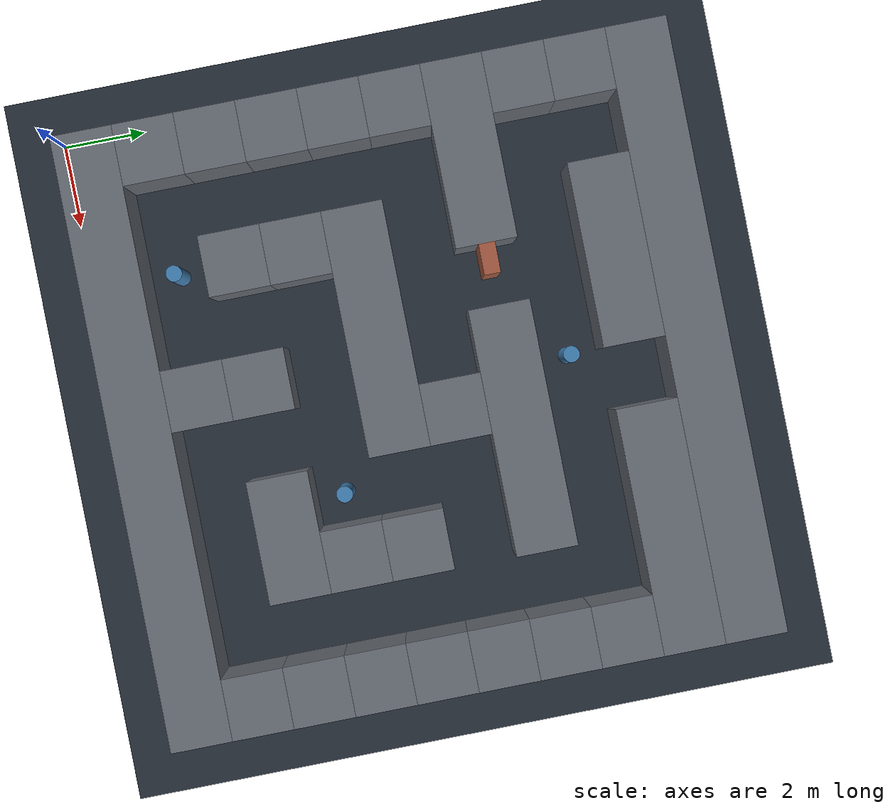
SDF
<?xml version="1.0"?>
<sdf version="1.9">
  <world name="maze">
    <plugin filename="gz-sim-physics-system" name="gz::sim::systems::Physics"/>
    <plugin filename="gz-sim-user-commands-system" name="gz::sim::systems::UserCommands"/>
    <plugin filename="gz-sim-scene-broadcaster-system" name="gz::sim::systems::SceneBroadcaster"/>
    <plugin filename="gz-sim-sensors-system" name="gz::sim::systems::Sensors">
      <render_engine>ogre2</render_engine>
    </plugin>
    <plugin filename="gz-sim-imu-system" name="gz::sim::systems::Imu"/>

    <gravity>0 0 -9.81</gravity>
    <physics name="accurate_omni_physics" type="ode">
      <max_step_size>0.001</max_step_size>
      <real_time_factor>1.0</real_time_factor>
      <real_time_update_rate>1000</real_time_update_rate>
    </physics>

    <scene>
      <ambient>0.35 0.38 0.42 1</ambient>
      <background>0.08 0.10 0.14 1</background>
      <shadows>true</shadows>
      <grid>false</grid>
    </scene>

    <light name="sun" type="directional">
      <pose>7.5 7.5 15 0.35 -0.45 0</pose>
      <direction>-0.3 0.3 -0.9</direction>
      <diffuse>0.9 0.9 0.95 1</diffuse>
      <specular>0.3 0.3 0.35 1</specular>
      <attenuation><range>50</range></attenuation>
      <cast_shadows>true</cast_shadows>
    </light>

    <model name="maze_floor">
      <static>true</static>
      <pose>7.5 7.5 0 0 0 0</pose>
      <link name="link">
        <collision name="collision">
          <geometry><plane><normal>0 0 1</normal><size>18 18</size></plane></geometry>
          <surface><friction><ode><mu>1.0</mu><mu2>1.0</mu2></ode></friction></surface>
        </collision>
        <visual name="visual">
          <geometry><plane><normal>0 0 1</normal><size>18 18</size></plane></geometry>
          <material>
            <ambient>0.10 0.12 0.16 1</ambient>
            <diffuse>0.15 0.18 0.22 1</diffuse>
          </material>
        </visual>
      </link>
    </model>

    <model name="maze">
      <static>true</static>
      <link name="walls">
      <collision name="wall_col_0">
        <pose>7.500 0.750 0.600 0 0 0</pose>
        <geometry><box><size>15.000 1.500 1.200</size></box></geometry>
        <surface><friction><ode><mu>1.0</mu><mu2>1.0</mu2></ode></friction></surface>
      </collision>
      <visual name="wall_vis_0">
        <pose>7.500 0.750 0.600 0 0 0</pose>
        <geometry><box><size>15.000 1.500 1.200</size></box></geometry>
        <material>
          <ambient>0.25 0.27 0.30 1</ambient>
          <diffuse>0.40 0.42 0.45 1</diffuse>
          <specular>0.1 0.1 0.1 1</specular>
        </material>
      </visual>
      <collision name="wall_col_1">
        <pose>0.750 2.250 0.600 0 0 0</pose>
        <geometry><box><size>1.500 1.500 1.200</size></box></geometry>
        <surface><friction><ode><mu>1.0</mu><mu2>1.0</mu2></ode></friction></surface>
      </collision>
      <visual name="wall_vis_1">
        <pose>0.750 2.250 0.600 0 0 0</pose>
        <geometry><box><size>1.500 1.500 1.200</size></box></geometry>
        <material>
          <ambient>0.25 0.27 0.30 1</ambient>
          <diffuse>0.40 0.42 0.45 1</diffuse>
          <specular>0.1 0.1 0.1 1</specular>
        </material>
      </visual>
      <collision name="wall_col_2">
        <pose>6.750 2.250 0.600 0 0 0</pose>
        <geometry><box><size>1.500 1.500 1.200</size></box></geometry>
        <surface><friction><ode><mu>1.0</mu><mu2>1.0</mu2></ode></friction></surface>
      </collision>
      <visual name="wall_vis_2">
        <pose>6.750 2.250 0.600 0 0 0</pose>
        <geometry><box><size>1.500 1.500 1.200</size></box></geometry>
        <material>
          <ambient>0.25 0.27 0.30 1</ambient>
          <diffuse>0.40 0.42 0.45 1</diffuse>
          <specular>0.1 0.1 0.1 1</specular>
        </material>
      </visual>
      <collision name="wall_col_3">
        <pose>14.250 2.250 0.600 0 0 0</pose>
        <geometry><box><size>1.500 1.500 1.200</size></box></geometry>
        <surface><friction><ode><mu>1.0</mu><mu2>1.0</mu2></ode></friction></surface>
      </collision>
      <visual name="wall_vis_3">
        <pose>14.250 2.250 0.600 0 0 0</pose>
        <geometry><box><size>1.500 1.500 1.200</size></box></geometry>
        <material>
          <ambient>0.25 0.27 0.30 1</ambient>
          <diffuse>0.40 0.42 0.45 1</diffuse>
          <specular>0.1 0.1 0.1 1</specular>
        </material>
      </visual>
      <collision name="wall_col_4">
        <pose>0.750 3.750 0.600 0 0 0</pose>
        <geometry><box><size>1.500 1.500 1.200</size></box></geometry>
        <surface><friction><ode><mu>1.0</mu><mu2>1.0</mu2></ode></friction></surface>
      </collision>
      <visual name="wall_vis_4">
        <pose>0.750 3.750 0.600 0 0 0</pose>
        <geometry><box><size>1.500 1.500 1.200</size></box></geometry>
        <material>
          <ambient>0.25 0.27 0.30 1</ambient>
          <diffuse>0.40 0.42 0.45 1</diffuse>
          <specular>0.1 0.1 0.1 1</specular>
        </material>
      </visual>
      <collision name="wall_col_5">
        <pose>3.750 3.750 0.600 0 0 0</pose>
        <geometry><box><size>1.500 1.500 1.200</size></box></geometry>
        <surface><friction><ode><mu>1.0</mu><mu2>1.0</mu2></ode></friction></surface>
      </collision>
      <visual name="wall_vis_5">
        <pose>3.750 3.750 0.600 0 0 0</pose>
        <geometry><box><size>1.500 1.500 1.200</size></box></geometry>
        <material>
          <ambient>0.25 0.27 0.30 1</ambient>
          <diffuse>0.40 0.42 0.45 1</diffuse>
          <specular>0.1 0.1 0.1 1</specular>
        </material>
      </visual>
      <collision name="wall_col_6">
        <pose>6.750 3.750 0.600 0 0 0</pose>
        <geometry><box><size>1.500 1.500 1.200</size></box></geometry>
        <surface><friction><ode><mu>1.0</mu><mu2>1.0</mu2></ode></friction></surface>
      </collision>
      <visual name="wall_vis_6">
        <pose>6.750 3.750 0.600 0 0 0</pose>
        <geometry><box><size>1.500 1.500 1.200</size></box></geometry>
        <material>
          <ambient>0.25 0.27 0.30 1</ambient>
          <diffuse>0.40 0.42 0.45 1</diffuse>
          <specular>0.1 0.1 0.1 1</specular>
        </material>
      </visual>
      <collision name="wall_col_7">
        <pose>10.500 3.750 0.600 0 0 0</pose>
        <geometry><box><size>3.000 1.500 1.200</size></box></geometry>
        <surface><friction><ode><mu>1.0</mu><mu2>1.0</mu2></ode></friction></surface>
      </collision>
      <visual name="wall_vis_7">
        <pose>10.500 3.750 0.600 0 0 0</pose>
        <geometry><box><size>3.000 1.500 1.200</size></box></geometry>
        <material>
          <ambient>0.25 0.27 0.30 1</ambient>
          <diffuse>0.40 0.42 0.45 1</diffuse>
          <specular>0.1 0.1 0.1 1</specular>
        </material>
      </visual>
      <collision name="wall_col_8">
        <pose>14.250 3.750 0.600 0 0 0</pose>
        <geometry><box><size>1.500 1.500 1.200</size></box></geometry>
        <surface><friction><ode><mu>1.0</mu><mu2>1.0</mu2></ode></friction></surface>
      </collision>
      <visual name="wall_vis_8">
        <pose>14.250 3.750 0.600 0 0 0</pose>
        <geometry><box><size>1.500 1.500 1.200</size></box></geometry>
        <material>
          <ambient>0.25 0.27 0.30 1</ambient>
          <diffuse>0.40 0.42 0.45 1</diffuse>
          <specular>0.1 0.1 0.1 1</specular>
        </material>
      </visual>
      <collision name="wall_col_9">
        <pose>0.750 5.250 0.600 0 0 0</pose>
        <geometry><box><size>1.500 1.500 1.200</size></box></geometry>
        <surface><friction><ode><mu>1.0</mu><mu2>1.0</mu2></ode></friction></surface>
      </collision>
      <visual name="wall_vis_9">
        <pose>0.750 5.250 0.600 0 0 0</pose>
        <geometry><box><size>1.500 1.500 1.200</size></box></geometry>
        <material>
          <ambient>0.25 0.27 0.30 1</ambient>
          <diffuse>0.40 0.42 0.45 1</diffuse>
          <specular>0.1 0.1 0.1 1</specular>
        </material>
      </visual>
      <collision name="wall_col_10">
        <pose>3.750 5.250 0.600 0 0 0</pose>
        <geometry><box><size>1.500 1.500 1.200</size></box></geometry>
        <surface><friction><ode><mu>1.0</mu><mu2>1.0</mu2></ode></friction></surface>
      </collision>
      <visual name="wall_vis_10">
        <pose>3.750 5.250 0.600 0 0 0</pose>
        <geometry><box><size>1.500 1.500 1.200</size></box></geometry>
        <material>
          <ambient>0.25 0.27 0.30 1</ambient>
          <diffuse>0.40 0.42 0.45 1</diffuse>
          <specular>0.1 0.1 0.1 1</specular>
        </material>
      </visual>
      <collision name="wall_col_11">
        <pose>11.250 5.250 0.600 0 0 0</pose>
        <geometry><box><size>1.500 1.500 1.200</size></box></geometry>
        <surface><friction><ode><mu>1.0</mu><mu2>1.0</mu2></ode></friction></surface>
      </collision>
      <visual name="wall_vis_11">
        <pose>11.250 5.250 0.600 0 0 0</pose>
        <geometry><box><size>1.500 1.500 1.200</size></box></geometry>
        <material>
          <ambient>0.25 0.27 0.30 1</ambient>
          <diffuse>0.40 0.42 0.45 1</diffuse>
          <specular>0.1 0.1 0.1 1</specular>
        </material>
      </visual>
      <collision name="wall_col_12">
        <pose>14.250 5.250 0.600 0 0 0</pose>
        <geometry><box><size>1.500 1.500 1.200</size></box></geometry>
        <surface><friction><ode><mu>1.0</mu><mu2>1.0</mu2></ode></friction></surface>
      </collision>
      <visual name="wall_vis_12">
        <pose>14.250 5.250 0.600 0 0 0</pose>
        <geometry><box><size>1.500 1.500 1.200</size></box></geometry>
        <material>
          <ambient>0.25 0.27 0.30 1</ambient>
          <diffuse>0.40 0.42 0.45 1</diffuse>
          <specular>0.1 0.1 0.1 1</specular>
        </material>
      </visual>
      <collision name="wall_col_13">
        <pose>0.750 6.750 0.600 0 0 0</pose>
        <geometry><box><size>1.500 1.500 1.200</size></box></geometry>
        <surface><friction><ode><mu>1.0</mu><mu2>1.0</mu2></ode></friction></surface>
      </collision>
      <visual name="wall_vis_13">
        <pose>0.750 6.750 0.600 0 0 0</pose>
        <geometry><box><size>1.500 1.500 1.200</size></box></geometry>
        <material>
          <ambient>0.25 0.27 0.30 1</ambient>
          <diffuse>0.40 0.42 0.45 1</diffuse>
          <specular>0.1 0.1 0.1 1</specular>
        </material>
      </visual>
      <collision name="wall_col_14">
        <pose>6.000 6.750 0.600 0 0 0</pose>
        <geometry><box><size>6.000 1.500 1.200</size></box></geometry>
        <surface><friction><ode><mu>1.0</mu><mu2>1.0</mu2></ode></friction></surface>
      </collision>
      <visual name="wall_vis_14">
        <pose>6.000 6.750 0.600 0 0 0</pose>
        <geometry><box><size>6.000 1.500 1.200</size></box></geometry>
        <material>
          <ambient>0.25 0.27 0.30 1</ambient>
          <diffuse>0.40 0.42 0.45 1</diffuse>
          <specular>0.1 0.1 0.1 1</specular>
        </material>
      </visual>
      <collision name="wall_col_15">
        <pose>11.250 6.750 0.600 0 0 0</pose>
        <geometry><box><size>1.500 1.500 1.200</size></box></geometry>
        <surface><friction><ode><mu>1.0</mu><mu2>1.0</mu2></ode></friction></surface>
      </collision>
      <visual name="wall_vis_15">
        <pose>11.250 6.750 0.600 0 0 0</pose>
        <geometry><box><size>1.500 1.500 1.200</size></box></geometry>
        <material>
          <ambient>0.25 0.27 0.30 1</ambient>
          <diffuse>0.40 0.42 0.45 1</diffuse>
          <specular>0.1 0.1 0.1 1</specular>
        </material>
      </visual>
      <collision name="wall_col_16">
        <pose>14.250 6.750 0.600 0 0 0</pose>
        <geometry><box><size>1.500 1.500 1.200</size></box></geometry>
        <surface><friction><ode><mu>1.0</mu><mu2>1.0</mu2></ode></friction></surface>
      </collision>
      <visual name="wall_vis_16">
        <pose>14.250 6.750 0.600 0 0 0</pose>
        <geometry><box><size>1.500 1.500 1.200</size></box></geometry>
        <material>
          <ambient>0.25 0.27 0.30 1</ambient>
          <diffuse>0.40 0.42 0.45 1</diffuse>
          <specular>0.1 0.1 0.1 1</specular>
        </material>
      </visual>
      <collision name="wall_col_17">
        <pose>0.750 8.250 0.600 0 0 0</pose>
        <geometry><box><size>1.500 1.500 1.200</size></box></geometry>
        <surface><friction><ode><mu>1.0</mu><mu2>1.0</mu2></ode></friction></surface>
      </collision>
      <visual name="wall_vis_17">
        <pose>0.750 8.250 0.600 0 0 0</pose>
        <geometry><box><size>1.500 1.500 1.200</size></box></geometry>
        <material>
          <ambient>0.25 0.27 0.30 1</ambient>
          <diffuse>0.40 0.42 0.45 1</diffuse>
          <specular>0.1 0.1 0.1 1</specular>
        </material>
      </visual>
      <collision name="wall_col_18">
        <pose>8.250 8.250 0.600 0 0 0</pose>
        <geometry><box><size>1.500 1.500 1.200</size></box></geometry>
        <surface><friction><ode><mu>1.0</mu><mu2>1.0</mu2></ode></friction></surface>
      </collision>
      <visual name="wall_vis_18">
        <pose>8.250 8.250 0.600 0 0 0</pose>
        <geometry><box><size>1.500 1.500 1.200</size></box></geometry>
        <material>
          <ambient>0.25 0.27 0.30 1</ambient>
          <diffuse>0.40 0.42 0.45 1</diffuse>
          <specular>0.1 0.1 0.1 1</specular>
        </material>
      </visual>
      <collision name="wall_col_19">
        <pose>14.250 8.250 0.600 0 0 0</pose>
        <geometry><box><size>1.500 1.500 1.200</size></box></geometry>
        <surface><friction><ode><mu>1.0</mu><mu2>1.0</mu2></ode></friction></surface>
      </collision>
      <visual name="wall_vis_19">
        <pose>14.250 8.250 0.600 0 0 0</pose>
        <geometry><box><size>1.500 1.500 1.200</size></box></geometry>
        <material>
          <ambient>0.25 0.27 0.30 1</ambient>
          <diffuse>0.40 0.42 0.45 1</diffuse>
          <specular>0.1 0.1 0.1 1</specular>
        </material>
      </visual>
      <collision name="wall_col_20">
        <pose>2.250 9.750 0.600 0 0 0</pose>
        <geometry><box><size>4.500 1.500 1.200</size></box></geometry>
        <surface><friction><ode><mu>1.0</mu><mu2>1.0</mu2></ode></friction></surface>
      </collision>
      <visual name="wall_vis_20">
        <pose>2.250 9.750 0.600 0 0 0</pose>
        <geometry><box><size>4.500 1.500 1.200</size></box></geometry>
        <material>
          <ambient>0.25 0.27 0.30 1</ambient>
          <diffuse>0.40 0.42 0.45 1</diffuse>
          <specular>0.1 0.1 0.1 1</specular>
        </material>
      </visual>
      <collision name="wall_col_21">
        <pose>9.000 9.750 0.600 0 0 0</pose>
        <geometry><box><size>6.000 1.500 1.200</size></box></geometry>
        <surface><friction><ode><mu>1.0</mu><mu2>1.0</mu2></ode></friction></surface>
      </collision>
      <visual name="wall_vis_21">
        <pose>9.000 9.750 0.600 0 0 0</pose>
        <geometry><box><size>6.000 1.500 1.200</size></box></geometry>
        <material>
          <ambient>0.25 0.27 0.30 1</ambient>
          <diffuse>0.40 0.42 0.45 1</diffuse>
          <specular>0.1 0.1 0.1 1</specular>
        </material>
      </visual>
      <collision name="wall_col_22">
        <pose>14.250 9.750 0.600 0 0 0</pose>
        <geometry><box><size>1.500 1.500 1.200</size></box></geometry>
        <surface><friction><ode><mu>1.0</mu><mu2>1.0</mu2></ode></friction></surface>
      </collision>
      <visual name="wall_vis_22">
        <pose>14.250 9.750 0.600 0 0 0</pose>
        <geometry><box><size>1.500 1.500 1.200</size></box></geometry>
        <material>
          <ambient>0.25 0.27 0.30 1</ambient>
          <diffuse>0.40 0.42 0.45 1</diffuse>
          <specular>0.1 0.1 0.1 1</specular>
        </material>
      </visual>
      <collision name="wall_col_23">
        <pose>0.750 11.250 0.600 0 0 0</pose>
        <geometry><box><size>1.500 1.500 1.200</size></box></geometry>
        <surface><friction><ode><mu>1.0</mu><mu2>1.0</mu2></ode></friction></surface>
      </collision>
      <visual name="wall_vis_23">
        <pose>0.750 11.250 0.600 0 0 0</pose>
        <geometry><box><size>1.500 1.500 1.200</size></box></geometry>
        <material>
          <ambient>0.25 0.27 0.30 1</ambient>
          <diffuse>0.40 0.42 0.45 1</diffuse>
          <specular>0.1 0.1 0.1 1</specular>
        </material>
      </visual>
      <collision name="wall_col_24">
        <pose>14.250 11.250 0.600 0 0 0</pose>
        <geometry><box><size>1.500 1.500 1.200</size></box></geometry>
        <surface><friction><ode><mu>1.0</mu><mu2>1.0</mu2></ode></friction></surface>
      </collision>
      <visual name="wall_vis_24">
        <pose>14.250 11.250 0.600 0 0 0</pose>
        <geometry><box><size>1.500 1.500 1.200</size></box></geometry>
        <material>
          <ambient>0.25 0.27 0.30 1</ambient>
          <diffuse>0.40 0.42 0.45 1</diffuse>
          <specular>0.1 0.1 0.1 1</specular>
        </material>
      </visual>
      <collision name="wall_col_25">
        <pose>0.750 12.750 0.600 0 0 0</pose>
        <geometry><box><size>1.500 1.500 1.200</size></box></geometry>
        <surface><friction><ode><mu>1.0</mu><mu2>1.0</mu2></ode></friction></surface>
      </collision>
      <visual name="wall_vis_25">
        <pose>0.750 12.750 0.600 0 0 0</pose>
        <geometry><box><size>1.500 1.500 1.200</size></box></geometry>
        <material>
          <ambient>0.25 0.27 0.30 1</ambient>
          <diffuse>0.40 0.42 0.45 1</diffuse>
          <specular>0.1 0.1 0.1 1</specular>
        </material>
      </visual>
      <collision name="wall_col_26">
        <pose>5.250 12.750 0.600 0 0 0</pose>
        <geometry><box><size>4.500 1.500 1.200</size></box></geometry>
        <surface><friction><ode><mu>1.0</mu><mu2>1.0</mu2></ode></friction></surface>
      </collision>
      <visual name="wall_vis_26">
        <pose>5.250 12.750 0.600 0 0 0</pose>
        <geometry><box><size>4.500 1.500 1.200</size></box></geometry>
        <material>
          <ambient>0.25 0.27 0.30 1</ambient>
          <diffuse>0.40 0.42 0.45 1</diffuse>
          <specular>0.1 0.1 0.1 1</specular>
        </material>
      </visual>
      <collision name="wall_col_27">
        <pose>12.000 12.750 0.600 0 0 0</pose>
        <geometry><box><size>6.000 1.500 1.200</size></box></geometry>
        <surface><friction><ode><mu>1.0</mu><mu2>1.0</mu2></ode></friction></surface>
      </collision>
      <visual name="wall_vis_27">
        <pose>12.000 12.750 0.600 0 0 0</pose>
        <geometry><box><size>6.000 1.500 1.200</size></box></geometry>
        <material>
          <ambient>0.25 0.27 0.30 1</ambient>
          <diffuse>0.40 0.42 0.45 1</diffuse>
          <specular>0.1 0.1 0.1 1</specular>
        </material>
      </visual>
      <collision name="wall_col_28">
        <pose>7.500 14.250 0.600 0 0 0</pose>
        <geometry><box><size>15.000 1.500 1.200</size></box></geometry>
        <surface><friction><ode><mu>1.0</mu><mu2>1.0</mu2></ode></friction></surface>
      </collision>
      <visual name="wall_vis_28">
        <pose>7.500 14.250 0.600 0 0 0</pose>
        <geometry><box><size>15.000 1.500 1.200</size></box></geometry>
        <material>
          <ambient>0.25 0.27 0.30 1</ambient>
          <diffuse>0.40 0.42 0.45 1</diffuse>
          <specular>0.1 0.1 0.1 1</specular>
        </material>
      </visual>
      <collision name="narrow_gap_col">
        <pose>4.700 9.750 0.600 0 0 0</pose>
        <geometry><box><size>1.100 0.400 1.200</size></box></geometry>
        <surface><friction><ode><mu>1.0</mu><mu2>1.0</mu2></ode></friction></surface>
      </collision>
      <visual name="narrow_gap_vis">
        <pose>4.700 9.750 0.600 0 0 0</pose>
        <geometry><box><size>1.100 0.400 1.200</size></box></geometry>
        <material>
          <ambient>0.45 0.25 0.20 1</ambient>
          <diffuse>0.65 0.35 0.25 1</diffuse>
        </material>
      </visual>
      <collision name="cyl_col_0">
        <pose>3.750 2.250 0.500 0 0 0</pose>
        <geometry><cylinder><radius>0.200</radius><length>1.000</length></cylinder></geometry>
        <surface><friction><ode><mu>1.0</mu><mu2>1.0</mu2></ode></friction></surface>
      </collision>
      <visual name="cyl_vis_0">
        <pose>3.750 2.250 0.500 0 0 0</pose>
        <geometry><cylinder><radius>0.200</radius><length>1.000</length></cylinder></geometry>
        <material>
          <ambient>0.15 0.30 0.45 1</ambient>
          <diffuse>0.25 0.50 0.70 1</diffuse>
        </material>
      </visual>
      <collision name="cyl_col_1">
        <pose>9.750 5.250 0.500 0 0 0</pose>
        <geometry><cylinder><radius>0.200</radius><length>1.000</length></cylinder></geometry>
        <surface><friction><ode><mu>1.0</mu><mu2>1.0</mu2></ode></friction></surface>
      </collision>
      <visual name="cyl_vis_1">
        <pose>9.750 5.250 0.500 0 0 0</pose>
        <geometry><cylinder><radius>0.200</radius><length>1.000</length></cylinder></geometry>
        <material>
          <ambient>0.15 0.30 0.45 1</ambient>
          <diffuse>0.25 0.50 0.70 1</diffuse>
        </material>
      </visual>
      <collision name="cyl_col_2">
        <pose>7.500 11.250 0.500 0 0 0</pose>
        <geometry><cylinder><radius>0.200</radius><length>1.000</length></cylinder></geometry>
        <surface><friction><ode><mu>1.0</mu><mu2>1.0</mu2></ode></friction></surface>
      </collision>
      <visual name="cyl_vis_2">
        <pose>7.500 11.250 0.500 0 0 0</pose>
        <geometry><cylinder><radius>0.200</radius><length>1.000</length></cylinder></geometry>
        <material>
          <ambient>0.15 0.30 0.45 1</ambient>
          <diffuse>0.25 0.50 0.70 1</diffuse>
        </material>
      </visual>
      </link>
    </model>
  </world>
</sdf>
